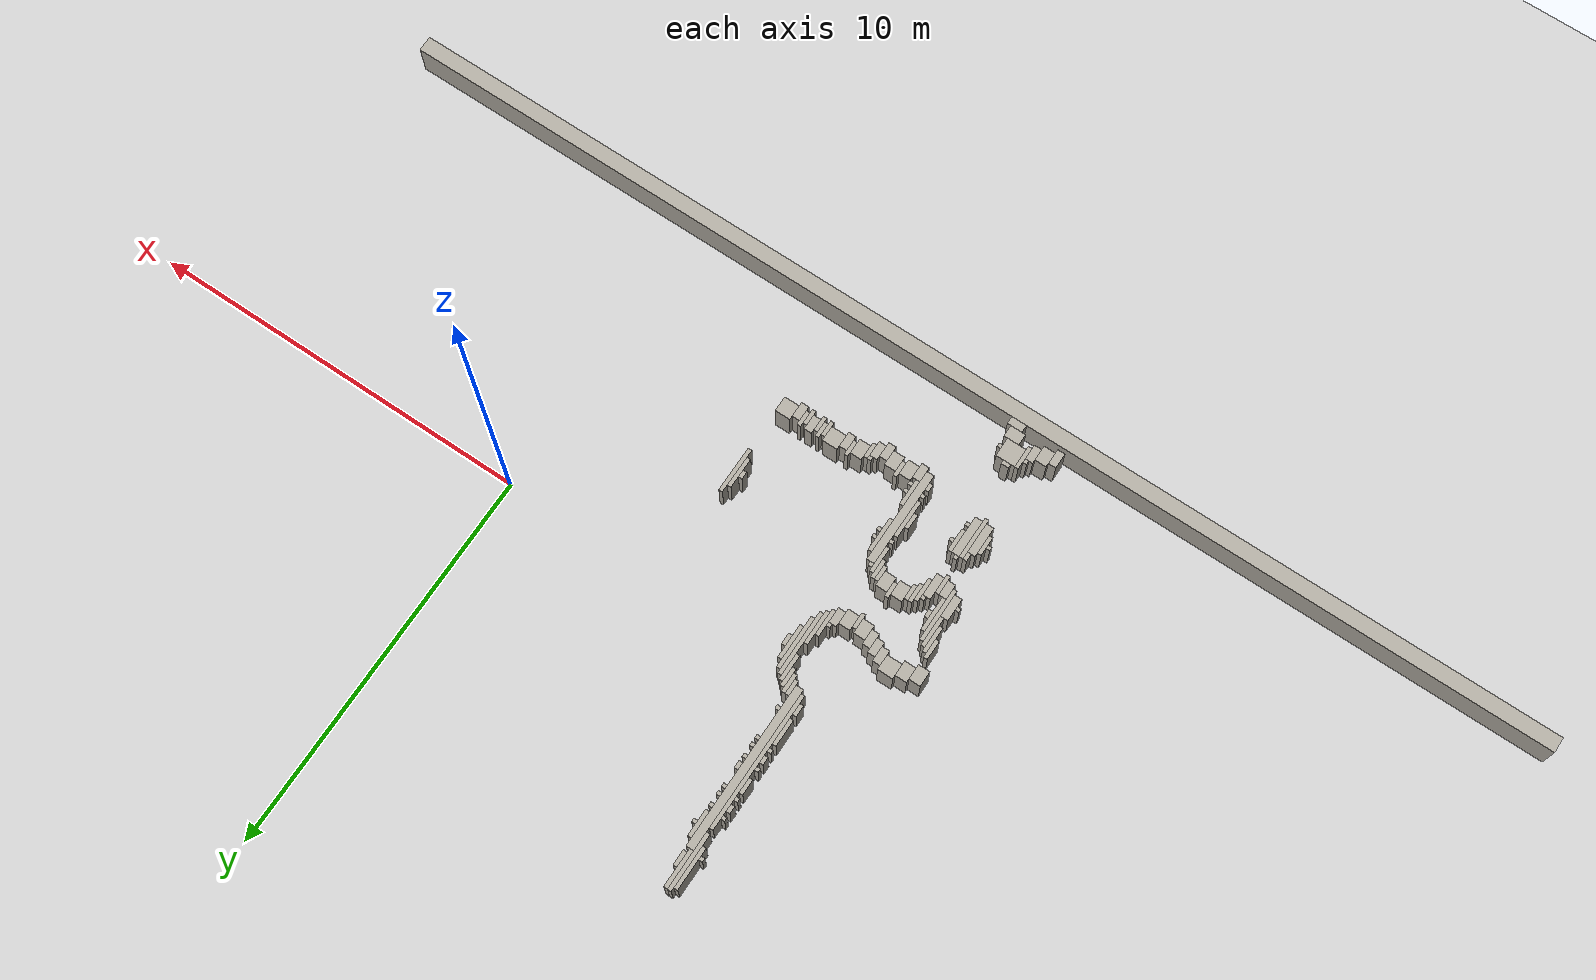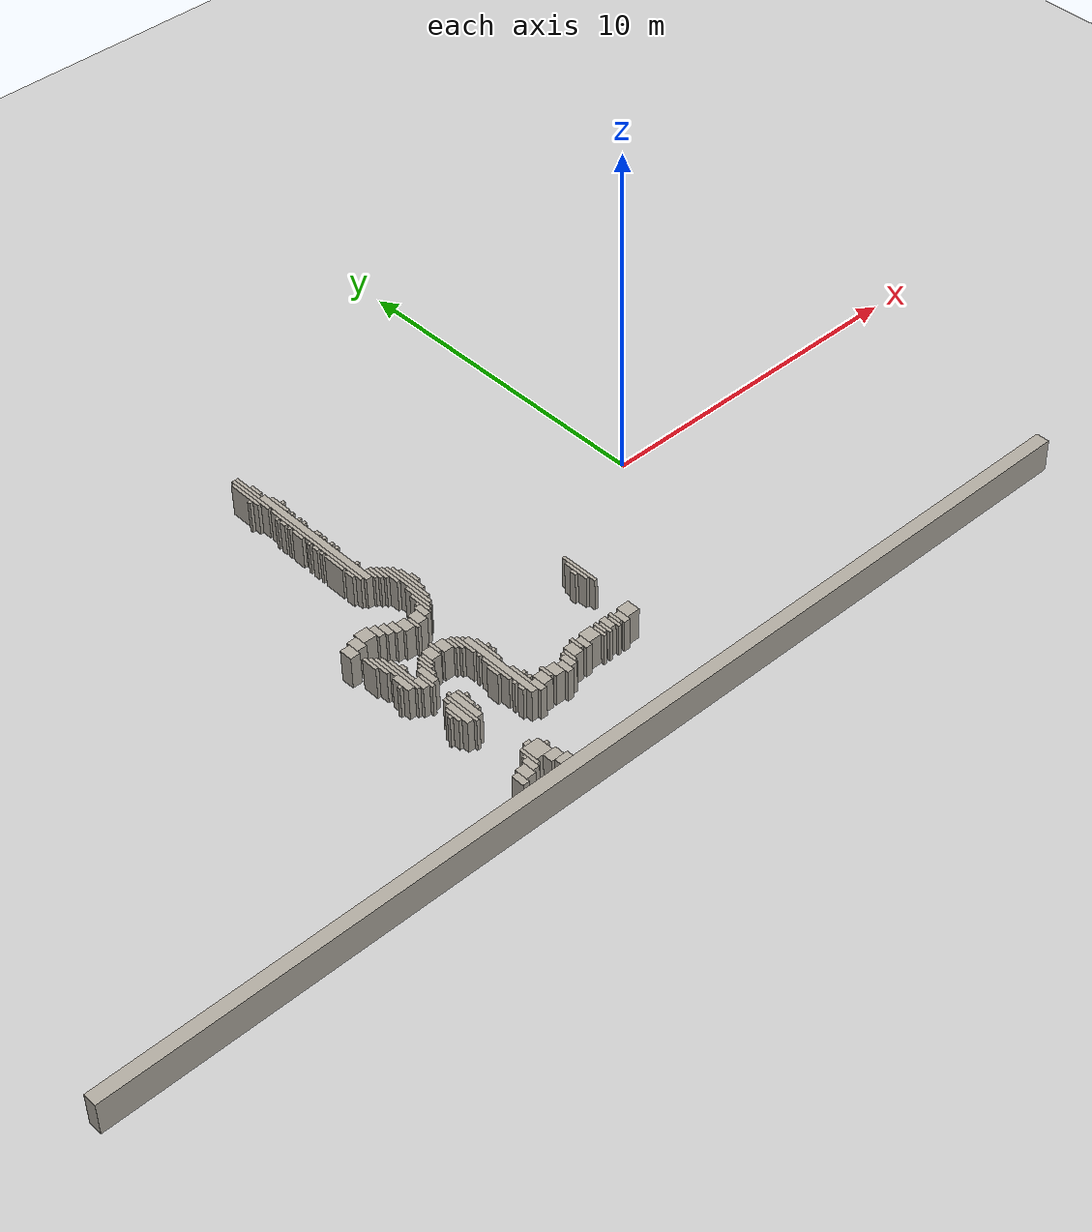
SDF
<sdf version="1.6">
 <world name="willow_office">
  <include><uri>model://sun</uri></include>
  <include><uri>model://ground_plane</uri></include>
  <model name="willow_office_walls">
   <static>true</static>
   <link name="w0000">
    <pose>-7.485 -7.738 0.500 0 0 0</pose>
    <collision name="c"><geometry><box><size>31.000 0.400 1.000</size></box></geometry></collision>
    <visual name="v">
     <geometry><box><size>31.000 0.400 1.000</size></box></geometry>
     <material><ambient>0.68 0.66 0.62 1</ambient><diffuse>0.68 0.66 0.62 1</diffuse></material>
    </visual>
   </link>
   <link name="w0006">
    <pose>-9.085 -7.438 0.500 0 0 0</pose>
    <collision name="c"><geometry><box><size>0.400 0.200 1.000</size></box></geometry></collision>
    <visual name="v">
     <geometry><box><size>0.400 0.200 1.000</size></box></geometry>
     <material><ambient>0.68 0.66 0.62 1</ambient><diffuse>0.68 0.66 0.62 1</diffuse></material>
    </visual>
   </link>
   <link name="w0015">
    <pose>-10.285 -7.238 0.500 0 0 0</pose>
    <collision name="c"><geometry><box><size>0.200 0.400 1.000</size></box></geometry></collision>
    <visual name="v">
     <geometry><box><size>0.200 0.400 1.000</size></box></geometry>
     <material><ambient>0.68 0.66 0.62 1</ambient><diffuse>0.68 0.66 0.62 1</diffuse></material>
    </visual>
   </link>
   <link name="w0023">
    <pose>-10.035 -7.138 0.500 0 0 0</pose>
    <collision name="c"><geometry><box><size>0.300 0.400 1.000</size></box></geometry></collision>
    <visual name="v">
     <geometry><box><size>0.300 0.400 1.000</size></box></geometry>
     <material><ambient>0.68 0.66 0.62 1</ambient><diffuse>0.68 0.66 0.62 1</diffuse></material>
    </visual>
   </link>
   <link name="w0024">
    <pose>-9.185 -7.188 0.500 0 0 0</pose>
    <collision name="c"><geometry><box><size>0.400 0.300 1.000</size></box></geometry></collision>
    <visual name="v">
     <geometry><box><size>0.400 0.300 1.000</size></box></geometry>
     <material><ambient>0.68 0.66 0.62 1</ambient><diffuse>0.68 0.66 0.62 1</diffuse></material>
    </visual>
   </link>
   <link name="w0032">
    <pose>-9.785 -7.038 0.500 0 0 0</pose>
    <collision name="c"><geometry><box><size>0.200 0.400 1.000</size></box></geometry></collision>
    <visual name="v">
     <geometry><box><size>0.200 0.400 1.000</size></box></geometry>
     <material><ambient>0.68 0.66 0.62 1</ambient><diffuse>0.68 0.66 0.62 1</diffuse></material>
    </visual>
   </link>
   <link name="w0041">
    <pose>-9.635 -6.838 0.500 0 0 0</pose>
    <collision name="c"><geometry><box><size>0.100 0.600 1.000</size></box></geometry></collision>
    <visual name="v">
     <geometry><box><size>0.100 0.600 1.000</size></box></geometry>
     <material><ambient>0.68 0.66 0.62 1</ambient><diffuse>0.68 0.66 0.62 1</diffuse></material>
    </visual>
   </link>
   <link name="w0050">
    <pose>-9.335 -6.788 0.500 0 0 0</pose>
    <collision name="c"><geometry><box><size>0.500 0.500 1.000</size></box></geometry></collision>
    <visual name="v">
     <geometry><box><size>0.500 0.500 1.000</size></box></geometry>
     <material><ambient>0.68 0.66 0.62 1</ambient><diffuse>0.68 0.66 0.62 1</diffuse></material>
    </visual>
   </link>
   <link name="w0061">
    <pose>-9.735 -6.788 0.500 0 0 0</pose>
    <collision name="c"><geometry><box><size>0.100 0.100 1.000</size></box></geometry></collision>
    <visual name="v">
     <geometry><box><size>0.100 0.100 1.000</size></box></geometry>
     <material><ambient>0.68 0.66 0.62 1</ambient><diffuse>0.68 0.66 0.62 1</diffuse></material>
    </visual>
   </link>
   <link name="w0062">
    <pose>-9.035 -6.788 0.500 0 0 0</pose>
    <collision name="c"><geometry><box><size>0.100 0.100 1.000</size></box></geometry></collision>
    <visual name="v">
     <geometry><box><size>0.100 0.100 1.000</size></box></geometry>
     <material><ambient>0.68 0.66 0.62 1</ambient><diffuse>0.68 0.66 0.62 1</diffuse></material>
    </visual>
   </link>
   <link name="w0067">
    <pose>-9.385 -6.488 0.500 0 0 0</pose>
    <collision name="c"><geometry><box><size>0.200 0.100 1.000</size></box></geometry></collision>
    <visual name="v">
     <geometry><box><size>0.200 0.100 1.000</size></box></geometry>
     <material><ambient>0.68 0.66 0.62 1</ambient><diffuse>0.68 0.66 0.62 1</diffuse></material>
    </visual>
   </link>
   <link name="w0118">
    <pose>-7.885 -5.238 0.500 0 0 0</pose>
    <collision name="c"><geometry><box><size>0.200 0.400 1.000</size></box></geometry></collision>
    <visual name="v">
     <geometry><box><size>0.200 0.400 1.000</size></box></geometry>
     <material><ambient>0.68 0.66 0.62 1</ambient><diffuse>0.68 0.66 0.62 1</diffuse></material>
    </visual>
   </link>
   <link name="w0119">
    <pose>-6.985 -5.238 0.500 0 0 0</pose>
    <collision name="c"><geometry><box><size>0.200 0.400 1.000</size></box></geometry></collision>
    <visual name="v">
     <geometry><box><size>0.200 0.400 1.000</size></box></geometry>
     <material><ambient>0.68 0.66 0.62 1</ambient><diffuse>0.68 0.66 0.62 1</diffuse></material>
    </visual>
   </link>
   <link name="w0127">
    <pose>-8.085 -4.088 0.500 0 0 0</pose>
    <collision name="c"><geometry><box><size>0.200 2.500 1.000</size></box></geometry></collision>
    <visual name="v">
     <geometry><box><size>0.200 2.500 1.000</size></box></geometry>
     <material><ambient>0.68 0.66 0.62 1</ambient><diffuse>0.68 0.66 0.62 1</diffuse></material>
    </visual>
   </link>
   <link name="w0128">
    <pose>-7.635 -5.138 0.500 0 0 0</pose>
    <collision name="c"><geometry><box><size>0.300 0.400 1.000</size></box></geometry></collision>
    <visual name="v">
     <geometry><box><size>0.300 0.400 1.000</size></box></geometry>
     <material><ambient>0.68 0.66 0.62 1</ambient><diffuse>0.68 0.66 0.62 1</diffuse></material>
    </visual>
   </link>
   <link name="w0129">
    <pose>-7.235 -5.138 0.500 0 0 0</pose>
    <collision name="c"><geometry><box><size>0.300 0.400 1.000</size></box></geometry></collision>
    <visual name="v">
     <geometry><box><size>0.300 0.400 1.000</size></box></geometry>
     <material><ambient>0.68 0.66 0.62 1</ambient><diffuse>0.68 0.66 0.62 1</diffuse></material>
    </visual>
   </link>
   <link name="w0130">
    <pose>-6.785 -5.138 0.500 0 0 0</pose>
    <collision name="c"><geometry><box><size>0.200 0.400 1.000</size></box></geometry></collision>
    <visual name="v">
     <geometry><box><size>0.200 0.400 1.000</size></box></geometry>
     <material><ambient>0.68 0.66 0.62 1</ambient><diffuse>0.68 0.66 0.62 1</diffuse></material>
    </visual>
   </link>
   <link name="w0139">
    <pose>-7.435 -5.038 0.500 0 0 0</pose>
    <collision name="c"><geometry><box><size>0.100 0.400 1.000</size></box></geometry></collision>
    <visual name="v">
     <geometry><box><size>0.100 0.400 1.000</size></box></geometry>
     <material><ambient>0.68 0.66 0.62 1</ambient><diffuse>0.68 0.66 0.62 1</diffuse></material>
    </visual>
   </link>
   <link name="w0140">
    <pose>-6.635 -5.038 0.500 0 0 0</pose>
    <collision name="c"><geometry><box><size>0.100 0.400 1.000</size></box></geometry></collision>
    <visual name="v">
     <geometry><box><size>0.100 0.400 1.000</size></box></geometry>
     <material><ambient>0.68 0.66 0.62 1</ambient><diffuse>0.68 0.66 0.62 1</diffuse></material>
    </visual>
   </link>
   <link name="w0147">
    <pose>-9.735 -4.588 0.500 0 0 0</pose>
    <collision name="c"><geometry><box><size>0.100 1.100 1.000</size></box></geometry></collision>
    <visual name="v">
     <geometry><box><size>0.100 1.100 1.000</size></box></geometry>
     <material><ambient>0.68 0.66 0.62 1</ambient><diffuse>0.68 0.66 0.62 1</diffuse></material>
    </visual>
   </link>
   <link name="w0148">
    <pose>-8.235 -5.038 0.500 0 0 0</pose>
    <collision name="c"><geometry><box><size>0.100 0.200 1.000</size></box></geometry></collision>
    <visual name="v">
     <geometry><box><size>0.100 0.200 1.000</size></box></geometry>
     <material><ambient>0.68 0.66 0.62 1</ambient><diffuse>0.68 0.66 0.62 1</diffuse></material>
    </visual>
   </link>
   <link name="w0149">
    <pose>-6.435 -4.938 0.500 0 0 0</pose>
    <collision name="c"><geometry><box><size>0.300 0.400 1.000</size></box></geometry></collision>
    <visual name="v">
     <geometry><box><size>0.300 0.400 1.000</size></box></geometry>
     <material><ambient>0.68 0.66 0.62 1</ambient><diffuse>0.68 0.66 0.62 1</diffuse></material>
    </visual>
   </link>
   <link name="w0150">
    <pose>-6.085 -4.938 0.500 0 0 0</pose>
    <collision name="c"><geometry><box><size>0.200 0.400 1.000</size></box></geometry></collision>
    <visual name="v">
     <geometry><box><size>0.200 0.400 1.000</size></box></geometry>
     <material><ambient>0.68 0.66 0.62 1</ambient><diffuse>0.68 0.66 0.62 1</diffuse></material>
    </visual>
   </link>
   <link name="w0151">
    <pose>-5.535 -4.938 0.500 0 0 0</pose>
    <collision name="c"><geometry><box><size>0.100 0.400 1.000</size></box></geometry></collision>
    <visual name="v">
     <geometry><box><size>0.100 0.400 1.000</size></box></geometry>
     <material><ambient>0.68 0.66 0.62 1</ambient><diffuse>0.68 0.66 0.62 1</diffuse></material>
    </visual>
   </link>
   <link name="w0152">
    <pose>-5.335 -4.938 0.500 0 0 0</pose>
    <collision name="c"><geometry><box><size>0.100 0.400 1.000</size></box></geometry></collision>
    <visual name="v">
     <geometry><box><size>0.100 0.400 1.000</size></box></geometry>
     <material><ambient>0.68 0.66 0.62 1</ambient><diffuse>0.68 0.66 0.62 1</diffuse></material>
    </visual>
   </link>
   <link name="w0153">
    <pose>-5.035 -4.938 0.500 0 0 0</pose>
    <collision name="c"><geometry><box><size>0.100 0.400 1.000</size></box></geometry></collision>
    <visual name="v">
     <geometry><box><size>0.100 0.400 1.000</size></box></geometry>
     <material><ambient>0.68 0.66 0.62 1</ambient><diffuse>0.68 0.66 0.62 1</diffuse></material>
    </visual>
   </link>
   <link name="w0154">
    <pose>-4.785 -4.938 0.500 0 0 0</pose>
    <collision name="c"><geometry><box><size>0.200 0.400 1.000</size></box></geometry></collision>
    <visual name="v">
     <geometry><box><size>0.200 0.400 1.000</size></box></geometry>
     <material><ambient>0.68 0.66 0.62 1</ambient><diffuse>0.68 0.66 0.62 1</diffuse></material>
    </visual>
   </link>
   <link name="w0161">
    <pose>-9.885 -4.638 0.500 0 0 0</pose>
    <collision name="c"><geometry><box><size>0.200 0.800 1.000</size></box></geometry></collision>
    <visual name="v">
     <geometry><box><size>0.200 0.800 1.000</size></box></geometry>
     <material><ambient>0.68 0.66 0.62 1</ambient><diffuse>0.68 0.66 0.62 1</diffuse></material>
    </visual>
   </link>
   <link name="w0162">
    <pose>-9.585 -4.538 0.500 0 0 0</pose>
    <collision name="c"><geometry><box><size>0.200 1.000 1.000</size></box></geometry></collision>
    <visual name="v">
     <geometry><box><size>0.200 1.000 1.000</size></box></geometry>
     <material><ambient>0.68 0.66 0.62 1</ambient><diffuse>0.68 0.66 0.62 1</diffuse></material>
    </visual>
   </link>
   <link name="w0163">
    <pose>-7.935 -4.688 0.500 0 0 0</pose>
    <collision name="c"><geometry><box><size>0.100 0.700 1.000</size></box></geometry></collision>
    <visual name="v">
     <geometry><box><size>0.100 0.700 1.000</size></box></geometry>
     <material><ambient>0.68 0.66 0.62 1</ambient><diffuse>0.68 0.66 0.62 1</diffuse></material>
    </visual>
   </link>
   <link name="w0164">
    <pose>-6.235 -4.838 0.500 0 0 0</pose>
    <collision name="c"><geometry><box><size>0.100 0.400 1.000</size></box></geometry></collision>
    <visual name="v">
     <geometry><box><size>0.100 0.400 1.000</size></box></geometry>
     <material><ambient>0.68 0.66 0.62 1</ambient><diffuse>0.68 0.66 0.62 1</diffuse></material>
    </visual>
   </link>
   <link name="w0165">
    <pose>-5.785 -4.838 0.500 0 0 0</pose>
    <collision name="c"><geometry><box><size>0.400 0.400 1.000</size></box></geometry></collision>
    <visual name="v">
     <geometry><box><size>0.400 0.400 1.000</size></box></geometry>
     <material><ambient>0.68 0.66 0.62 1</ambient><diffuse>0.68 0.66 0.62 1</diffuse></material>
    </visual>
   </link>
   <link name="w0166">
    <pose>-5.435 -4.838 0.500 0 0 0</pose>
    <collision name="c"><geometry><box><size>0.100 0.400 1.000</size></box></geometry></collision>
    <visual name="v">
     <geometry><box><size>0.100 0.400 1.000</size></box></geometry>
     <material><ambient>0.68 0.66 0.62 1</ambient><diffuse>0.68 0.66 0.62 1</diffuse></material>
    </visual>
   </link>
   <link name="w0167">
    <pose>-5.185 -4.838 0.500 0 0 0</pose>
    <collision name="c"><geometry><box><size>0.200 0.400 1.000</size></box></geometry></collision>
    <visual name="v">
     <geometry><box><size>0.200 0.400 1.000</size></box></geometry>
     <material><ambient>0.68 0.66 0.62 1</ambient><diffuse>0.68 0.66 0.62 1</diffuse></material>
    </visual>
   </link>
   <link name="w0168">
    <pose>-4.935 -4.838 0.500 0 0 0</pose>
    <collision name="c"><geometry><box><size>0.100 0.400 1.000</size></box></geometry></collision>
    <visual name="v">
     <geometry><box><size>0.100 0.400 1.000</size></box></geometry>
     <material><ambient>0.68 0.66 0.62 1</ambient><diffuse>0.68 0.66 0.62 1</diffuse></material>
    </visual>
   </link>
   <link name="w0169">
    <pose>-4.485 -4.838 0.500 0 0 0</pose>
    <collision name="c"><geometry><box><size>0.400 0.400 1.000</size></box></geometry></collision>
    <visual name="v">
     <geometry><box><size>0.400 0.400 1.000</size></box></geometry>
     <material><ambient>0.68 0.66 0.62 1</ambient><diffuse>0.68 0.66 0.62 1</diffuse></material>
    </visual>
   </link>
   <link name="w0178">
    <pose>-7.835 -4.888 0.500 0 0 0</pose>
    <collision name="c"><geometry><box><size>0.100 0.100 1.000</size></box></geometry></collision>
    <visual name="v">
     <geometry><box><size>0.100 0.100 1.000</size></box></geometry>
     <material><ambient>0.68 0.66 0.62 1</ambient><diffuse>0.68 0.66 0.62 1</diffuse></material>
    </visual>
   </link>
   <link name="w0179">
    <pose>-6.735 -4.888 0.500 0 0 0</pose>
    <collision name="c"><geometry><box><size>0.100 0.100 1.000</size></box></geometry></collision>
    <visual name="v">
     <geometry><box><size>0.100 0.100 1.000</size></box></geometry>
     <material><ambient>0.68 0.66 0.62 1</ambient><diffuse>0.68 0.66 0.62 1</diffuse></material>
    </visual>
   </link>
   <link name="w0185">
    <pose>-10.035 -4.588 0.500 0 0 0</pose>
    <collision name="c"><geometry><box><size>0.100 0.500 1.000</size></box></geometry></collision>
    <visual name="v">
     <geometry><box><size>0.100 0.500 1.000</size></box></geometry>
     <material><ambient>0.68 0.66 0.62 1</ambient><diffuse>0.68 0.66 0.62 1</diffuse></material>
    </visual>
   </link>
   <link name="w0186">
    <pose>-9.435 -4.788 0.500 0 0 0</pose>
    <collision name="c"><geometry><box><size>0.100 0.100 1.000</size></box></geometry></collision>
    <visual name="v">
     <geometry><box><size>0.100 0.100 1.000</size></box></geometry>
     <material><ambient>0.68 0.66 0.62 1</ambient><diffuse>0.68 0.66 0.62 1</diffuse></material>
    </visual>
   </link>
   <link name="w0187">
    <pose>-8.235 -4.788 0.500 0 0 0</pose>
    <collision name="c"><geometry><box><size>0.100 0.100 1.000</size></box></geometry></collision>
    <visual name="v">
     <geometry><box><size>0.100 0.100 1.000</size></box></geometry>
     <material><ambient>0.68 0.66 0.62 1</ambient><diffuse>0.68 0.66 0.62 1</diffuse></material>
    </visual>
   </link>
   <link name="w0195">
    <pose>-7.835 -4.688 0.500 0 0 0</pose>
    <collision name="c"><geometry><box><size>0.100 0.100 1.000</size></box></geometry></collision>
    <visual name="v">
     <geometry><box><size>0.100 0.100 1.000</size></box></geometry>
     <material><ambient>0.68 0.66 0.62 1</ambient><diffuse>0.68 0.66 0.62 1</diffuse></material>
    </visual>
   </link>
   <link name="w0207">
    <pose>-10.135 -4.588 0.500 0 0 0</pose>
    <collision name="c"><geometry><box><size>0.100 0.100 1.000</size></box></geometry></collision>
    <visual name="v">
     <geometry><box><size>0.100 0.100 1.000</size></box></geometry>
     <material><ambient>0.68 0.66 0.62 1</ambient><diffuse>0.68 0.66 0.62 1</diffuse></material>
    </visual>
   </link>
   <link name="w0208">
    <pose>-9.435 -4.338 0.500 0 0 0</pose>
    <collision name="c"><geometry><box><size>0.100 0.600 1.000</size></box></geometry></collision>
    <visual name="v">
     <geometry><box><size>0.100 0.600 1.000</size></box></geometry>
     <material><ambient>0.68 0.66 0.62 1</ambient><diffuse>0.68 0.66 0.62 1</diffuse></material>
    </visual>
   </link>
   <link name="w0209">
    <pose>-8.235 -4.138 0.500 0 0 0</pose>
    <collision name="c"><geometry><box><size>0.100 1.000 1.000</size></box></geometry></collision>
    <visual name="v">
     <geometry><box><size>0.100 1.000 1.000</size></box></geometry>
     <material><ambient>0.68 0.66 0.62 1</ambient><diffuse>0.68 0.66 0.62 1</diffuse></material>
    </visual>
   </link>
   <link name="w0232">
    <pose>-9.335 -4.288 0.500 0 0 0</pose>
    <collision name="c"><geometry><box><size>0.100 0.100 1.000</size></box></geometry></collision>
    <visual name="v">
     <geometry><box><size>0.100 0.100 1.000</size></box></geometry>
     <material><ambient>0.68 0.66 0.62 1</ambient><diffuse>0.68 0.66 0.62 1</diffuse></material>
    </visual>
   </link>
   <link name="w0233">
    <pose>-8.335 -4.138 0.500 0 0 0</pose>
    <collision name="c"><geometry><box><size>0.100 0.400 1.000</size></box></geometry></collision>
    <visual name="v">
     <geometry><box><size>0.100 0.400 1.000</size></box></geometry>
     <material><ambient>0.68 0.66 0.62 1</ambient><diffuse>0.68 0.66 0.62 1</diffuse></material>
    </visual>
   </link>
   <link name="w0242">
    <pose>-9.835 -4.138 0.500 0 0 0</pose>
    <collision name="c"><geometry><box><size>0.100 0.200 1.000</size></box></geometry></collision>
    <visual name="v">
     <geometry><box><size>0.100 0.200 1.000</size></box></geometry>
     <material><ambient>0.68 0.66 0.62 1</ambient><diffuse>0.68 0.66 0.62 1</diffuse></material>
    </visual>
   </link>
   <link name="w0259">
    <pose>-9.635 -3.988 0.500 0 0 0</pose>
    <collision name="c"><geometry><box><size>0.100 0.100 1.000</size></box></geometry></collision>
    <visual name="v">
     <geometry><box><size>0.100 0.100 1.000</size></box></geometry>
     <material><ambient>0.68 0.66 0.62 1</ambient><diffuse>0.68 0.66 0.62 1</diffuse></material>
    </visual>
   </link>
   <link name="w0264">
    <pose>-7.935 -3.488 0.500 0 0 0</pose>
    <collision name="c"><geometry><box><size>0.100 0.900 1.000</size></box></geometry></collision>
    <visual name="v">
     <geometry><box><size>0.100 0.900 1.000</size></box></geometry>
     <material><ambient>0.68 0.66 0.62 1</ambient><diffuse>0.68 0.66 0.62 1</diffuse></material>
    </visual>
   </link>
   <link name="w0286">
    <pose>-7.835 -3.588 0.500 0 0 0</pose>
    <collision name="c"><geometry><box><size>0.100 0.100 1.000</size></box></geometry></collision>
    <visual name="v">
     <geometry><box><size>0.100 0.100 1.000</size></box></geometry>
     <material><ambient>0.68 0.66 0.62 1</ambient><diffuse>0.68 0.66 0.62 1</diffuse></material>
    </visual>
   </link>
   <link name="w0294">
    <pose>-9.735 -3.288 0.500 0 0 0</pose>
    <collision name="c"><geometry><box><size>0.100 0.500 1.000</size></box></geometry></collision>
    <visual name="v">
     <geometry><box><size>0.100 0.500 1.000</size></box></geometry>
     <material><ambient>0.68 0.66 0.62 1</ambient><diffuse>0.68 0.66 0.62 1</diffuse></material>
    </visual>
   </link>
   <link name="w0295">
    <pose>-8.235 -3.488 0.500 0 0 0</pose>
    <collision name="c"><geometry><box><size>0.100 0.100 1.000</size></box></geometry></collision>
    <visual name="v">
     <geometry><box><size>0.100 0.100 1.000</size></box></geometry>
     <material><ambient>0.68 0.66 0.62 1</ambient><diffuse>0.68 0.66 0.62 1</diffuse></material>
    </visual>
   </link>
   <link name="w0296">
    <pose>-4.335 -2.938 0.500 0 0 0</pose>
    <collision name="c"><geometry><box><size>0.100 1.200 1.000</size></box></geometry></collision>
    <visual name="v">
     <geometry><box><size>0.100 1.200 1.000</size></box></geometry>
     <material><ambient>0.68 0.66 0.62 1</ambient><diffuse>0.68 0.66 0.62 1</diffuse></material>
    </visual>
   </link>
   <link name="w0303">
    <pose>-9.885 -3.238 0.500 0 0 0</pose>
    <collision name="c"><geometry><box><size>0.200 0.400 1.000</size></box></geometry></collision>
    <visual name="v">
     <geometry><box><size>0.200 0.400 1.000</size></box></geometry>
     <material><ambient>0.68 0.66 0.62 1</ambient><diffuse>0.68 0.66 0.62 1</diffuse></material>
    </visual>
   </link>
   <link name="w0304">
    <pose>-9.585 -3.138 0.500 0 0 0</pose>
    <collision name="c"><geometry><box><size>0.200 0.600 1.000</size></box></geometry></collision>
    <visual name="v">
     <geometry><box><size>0.200 0.600 1.000</size></box></geometry>
     <material><ambient>0.68 0.66 0.62 1</ambient><diffuse>0.68 0.66 0.62 1</diffuse></material>
    </visual>
   </link>
   <link name="w0305">
    <pose>-7.835 -3.388 0.500 0 0 0</pose>
    <collision name="c"><geometry><box><size>0.100 0.100 1.000</size></box></geometry></collision>
    <visual name="v">
     <geometry><box><size>0.100 0.100 1.000</size></box></geometry>
     <material><ambient>0.68 0.66 0.62 1</ambient><diffuse>0.68 0.66 0.62 1</diffuse></material>
    </visual>
   </link>
   <link name="w0313">
    <pose>-10.035 -2.638 0.500 0 0 0</pose>
    <collision name="c"><geometry><box><size>0.100 1.400 1.000</size></box></geometry></collision>
    <visual name="v">
     <geometry><box><size>0.100 1.400 1.000</size></box></geometry>
     <material><ambient>0.68 0.66 0.62 1</ambient><diffuse>0.68 0.66 0.62 1</diffuse></material>
    </visual>
   </link>
   <link name="w0314">
    <pose>-8.235 -2.988 0.500 0 0 0</pose>
    <collision name="c"><geometry><box><size>0.100 0.700 1.000</size></box></geometry></collision>
    <visual name="v">
     <geometry><box><size>0.100 0.700 1.000</size></box></geometry>
     <material><ambient>0.68 0.66 0.62 1</ambient><diffuse>0.68 0.66 0.62 1</diffuse></material>
    </visual>
   </link>
   <link name="w0315">
    <pose>-4.435 -2.938 0.500 0 0 0</pose>
    <collision name="c"><geometry><box><size>0.100 0.800 1.000</size></box></geometry></collision>
    <visual name="v">
     <geometry><box><size>0.100 0.800 1.000</size></box></geometry>
     <material><ambient>0.68 0.66 0.62 1</ambient><diffuse>0.68 0.66 0.62 1</diffuse></material>
    </visual>
   </link>
   <link name="w0319">
    <pose>-10.185 -2.938 0.500 0 0 0</pose>
    <collision name="c"><geometry><box><size>0.200 0.600 1.000</size></box></geometry></collision>
    <visual name="v">
     <geometry><box><size>0.200 0.600 1.000</size></box></geometry>
     <material><ambient>0.68 0.66 0.62 1</ambient><diffuse>0.68 0.66 0.62 1</diffuse></material>
    </visual>
   </link>
   <link name="w0320">
    <pose>-9.435 -2.938 0.500 0 0 0</pose>
    <collision name="c"><geometry><box><size>0.100 0.600 1.000</size></box></geometry></collision>
    <visual name="v">
     <geometry><box><size>0.100 0.600 1.000</size></box></geometry>
     <material><ambient>0.68 0.66 0.62 1</ambient><diffuse>0.68 0.66 0.62 1</diffuse></material>
    </visual>
   </link>
   <link name="w0331">
    <pose>-10.335 -2.988 0.500 0 0 0</pose>
    <collision name="c"><geometry><box><size>0.100 0.100 1.000</size></box></geometry></collision>
    <visual name="v">
     <geometry><box><size>0.100 0.100 1.000</size></box></geometry>
     <material><ambient>0.68 0.66 0.62 1</ambient><diffuse>0.68 0.66 0.62 1</diffuse></material>
    </visual>
   </link>
   <link name="w0332">
    <pose>-9.935 -2.588 0.500 0 0 0</pose>
    <collision name="c"><geometry><box><size>0.100 0.900 1.000</size></box></geometry></collision>
    <visual name="v">
     <geometry><box><size>0.100 0.900 1.000</size></box></geometry>
     <material><ambient>0.68 0.66 0.62 1</ambient><diffuse>0.68 0.66 0.62 1</diffuse></material>
    </visual>
   </link>
   <link name="w0333">
    <pose>-9.335 -2.788 0.500 0 0 0</pose>
    <collision name="c"><geometry><box><size>0.100 0.500 1.000</size></box></geometry></collision>
    <visual name="v">
     <geometry><box><size>0.100 0.500 1.000</size></box></geometry>
     <material><ambient>0.68 0.66 0.62 1</ambient><diffuse>0.68 0.66 0.62 1</diffuse></material>
    </visual>
   </link>
   <link name="w0334">
    <pose>-8.335 -2.788 0.500 0 0 0</pose>
    <collision name="c"><geometry><box><size>0.100 0.500 1.000</size></box></geometry></collision>
    <visual name="v">
     <geometry><box><size>0.100 0.500 1.000</size></box></geometry>
     <material><ambient>0.68 0.66 0.62 1</ambient><diffuse>0.68 0.66 0.62 1</diffuse></material>
    </visual>
   </link>
   <link name="w0335">
    <pose>-4.535 -2.938 0.500 0 0 0</pose>
    <collision name="c"><geometry><box><size>0.100 0.200 1.000</size></box></geometry></collision>
    <visual name="v">
     <geometry><box><size>0.100 0.200 1.000</size></box></geometry>
     <material><ambient>0.68 0.66 0.62 1</ambient><diffuse>0.68 0.66 0.62 1</diffuse></material>
    </visual>
   </link>
   <link name="w0344">
    <pose>-9.235 -2.738 0.500 0 0 0</pose>
    <collision name="c"><geometry><box><size>0.100 0.400 1.000</size></box></geometry></collision>
    <visual name="v">
     <geometry><box><size>0.100 0.400 1.000</size></box></geometry>
     <material><ambient>0.68 0.66 0.62 1</ambient><diffuse>0.68 0.66 0.62 1</diffuse></material>
    </visual>
   </link>
   <link name="w0345">
    <pose>-8.435 -2.738 0.500 0 0 0</pose>
    <collision name="c"><geometry><box><size>0.100 0.400 1.000</size></box></geometry></collision>
    <visual name="v">
     <geometry><box><size>0.100 0.400 1.000</size></box></geometry>
     <material><ambient>0.68 0.66 0.62 1</ambient><diffuse>0.68 0.66 0.62 1</diffuse></material>
    </visual>
   </link>
   <link name="w0350">
    <pose>-9.535 -2.788 0.500 0 0 0</pose>
    <collision name="c"><geometry><box><size>0.100 0.100 1.000</size></box></geometry></collision>
    <visual name="v">
     <geometry><box><size>0.100 0.100 1.000</size></box></geometry>
     <material><ambient>0.68 0.66 0.62 1</ambient><diffuse>0.68 0.66 0.62 1</diffuse></material>
    </visual>
   </link>
   <link name="w0351">
    <pose>-9.035 -2.638 0.500 0 0 0</pose>
    <collision name="c"><geometry><box><size>0.300 0.400 1.000</size></box></geometry></collision>
    <visual name="v">
     <geometry><box><size>0.300 0.400 1.000</size></box></geometry>
     <material><ambient>0.68 0.66 0.62 1</ambient><diffuse>0.68 0.66 0.62 1</diffuse></material>
    </visual>
   </link>
   <link name="w0352">
    <pose>-8.635 -2.638 0.500 0 0 0</pose>
    <collision name="c"><geometry><box><size>0.300 0.400 1.000</size></box></geometry></collision>
    <visual name="v">
     <geometry><box><size>0.300 0.400 1.000</size></box></geometry>
     <material><ambient>0.68 0.66 0.62 1</ambient><diffuse>0.68 0.66 0.62 1</diffuse></material>
    </visual>
   </link>
   <link name="w0353">
    <pose>-8.135 -2.788 0.500 0 0 0</pose>
    <collision name="c"><geometry><box><size>0.100 0.100 1.000</size></box></geometry></collision>
    <visual name="v">
     <geometry><box><size>0.100 0.100 1.000</size></box></geometry>
     <material><ambient>0.68 0.66 0.62 1</ambient><diffuse>0.68 0.66 0.62 1</diffuse></material>
    </visual>
   </link>
   <link name="w0357">
    <pose>-8.835 -2.538 0.500 0 0 0</pose>
    <collision name="c"><geometry><box><size>0.100 0.400 1.000</size></box></geometry></collision>
    <visual name="v">
     <geometry><box><size>0.100 0.400 1.000</size></box></geometry>
     <material><ambient>0.68 0.66 0.62 1</ambient><diffuse>0.68 0.66 0.62 1</diffuse></material>
    </visual>
   </link>
   <link name="w0363">
    <pose>-10.135 -2.238 0.500 0 0 0</pose>
    <collision name="c"><geometry><box><size>0.100 0.800 1.000</size></box></geometry></collision>
    <visual name="v">
     <geometry><box><size>0.100 0.800 1.000</size></box></geometry>
     <material><ambient>0.68 0.66 0.62 1</ambient><diffuse>0.68 0.66 0.62 1</diffuse></material>
    </visual>
   </link>
   <link name="w0364">
    <pose>-9.835 -2.538 0.500 0 0 0</pose>
    <collision name="c"><geometry><box><size>0.100 0.200 1.000</size></box></geometry></collision>
    <visual name="v">
     <geometry><box><size>0.100 0.200 1.000</size></box></geometry>
     <material><ambient>0.68 0.66 0.62 1</ambient><diffuse>0.68 0.66 0.62 1</diffuse></material>
    </visual>
   </link>
   <link name="w0374">
    <pose>-10.235 -2.088 0.500 0 0 0</pose>
    <collision name="c"><geometry><box><size>0.100 0.700 1.000</size></box></geometry></collision>
    <visual name="v">
     <geometry><box><size>0.100 0.700 1.000</size></box></geometry>
     <material><ambient>0.68 0.66 0.62 1</ambient><diffuse>0.68 0.66 0.62 1</diffuse></material>
    </visual>
   </link>
   <link name="w0385">
    <pose>-10.335 -1.888 0.500 0 0 0</pose>
    <collision name="c"><geometry><box><size>0.100 0.500 1.000</size></box></geometry></collision>
    <visual name="v">
     <geometry><box><size>0.100 0.500 1.000</size></box></geometry>
     <material><ambient>0.68 0.66 0.62 1</ambient><diffuse>0.68 0.66 0.62 1</diffuse></material>
    </visual>
   </link>
   <link name="w0416">
    <pose>-8.635 -1.538 0.500 0 0 0</pose>
    <collision name="c"><geometry><box><size>0.100 0.400 1.000</size></box></geometry></collision>
    <visual name="v">
     <geometry><box><size>0.100 0.400 1.000</size></box></geometry>
     <material><ambient>0.68 0.66 0.62 1</ambient><diffuse>0.68 0.66 0.62 1</diffuse></material>
    </visual>
   </link>
   <link name="w0425">
    <pose>-8.835 -1.438 0.500 0 0 0</pose>
    <collision name="c"><geometry><box><size>0.300 0.400 1.000</size></box></geometry></collision>
    <visual name="v">
     <geometry><box><size>0.300 0.400 1.000</size></box></geometry>
     <material><ambient>0.68 0.66 0.62 1</ambient><diffuse>0.68 0.66 0.62 1</diffuse></material>
    </visual>
   </link>
   <link name="w0426">
    <pose>-8.435 -1.438 0.500 0 0 0</pose>
    <collision name="c"><geometry><box><size>0.300 0.400 1.000</size></box></geometry></collision>
    <visual name="v">
     <geometry><box><size>0.300 0.400 1.000</size></box></geometry>
     <material><ambient>0.68 0.66 0.62 1</ambient><diffuse>0.68 0.66 0.62 1</diffuse></material>
    </visual>
   </link>
   <link name="w0439">
    <pose>-9.085 -1.338 0.500 0 0 0</pose>
    <collision name="c"><geometry><box><size>0.200 0.400 1.000</size></box></geometry></collision>
    <visual name="v">
     <geometry><box><size>0.200 0.400 1.000</size></box></geometry>
     <material><ambient>0.68 0.66 0.62 1</ambient><diffuse>0.68 0.66 0.62 1</diffuse></material>
    </visual>
   </link>
   <link name="w0440">
    <pose>-8.185 -1.338 0.500 0 0 0</pose>
    <collision name="c"><geometry><box><size>0.200 0.400 1.000</size></box></geometry></collision>
    <visual name="v">
     <geometry><box><size>0.200 0.400 1.000</size></box></geometry>
     <material><ambient>0.68 0.66 0.62 1</ambient><diffuse>0.68 0.66 0.62 1</diffuse></material>
    </visual>
   </link>
   <link name="w0450">
    <pose>-10.435 -1.238 0.500 0 0 0</pose>
    <collision name="c"><geometry><box><size>0.300 0.400 1.000</size></box></geometry></collision>
    <visual name="v">
     <geometry><box><size>0.300 0.400 1.000</size></box></geometry>
     <material><ambient>0.68 0.66 0.62 1</ambient><diffuse>0.68 0.66 0.62 1</diffuse></material>
    </visual>
   </link>
   <link name="w0451">
    <pose>-9.285 -1.238 0.500 0 0 0</pose>
    <collision name="c"><geometry><box><size>0.200 0.400 1.000</size></box></geometry></collision>
    <visual name="v">
     <geometry><box><size>0.200 0.400 1.000</size></box></geometry>
     <material><ambient>0.68 0.66 0.62 1</ambient><diffuse>0.68 0.66 0.62 1</diffuse></material>
    </visual>
   </link>
   <link name="w0452">
    <pose>-8.035 -1.088 0.500 0 0 0</pose>
    <collision name="c"><geometry><box><size>0.100 0.700 1.000</size></box></geometry></collision>
    <visual name="v">
     <geometry><box><size>0.100 0.700 1.000</size></box></geometry>
     <material><ambient>0.68 0.66 0.62 1</ambient><diffuse>0.68 0.66 0.62 1</diffuse></material>
    </visual>
   </link>
   <link name="w0457">
    <pose>-10.135 -1.138 0.500 0 0 0</pose>
    <collision name="c"><geometry><box><size>0.300 0.400 1.000</size></box></geometry></collision>
    <visual name="v">
     <geometry><box><size>0.300 0.400 1.000</size></box></geometry>
     <material><ambient>0.68 0.66 0.62 1</ambient><diffuse>0.68 0.66 0.62 1</diffuse></material>
    </visual>
   </link>
   <link name="w0458">
    <pose>-9.485 -1.138 0.500 0 0 0</pose>
    <collision name="c"><geometry><box><size>0.200 0.400 1.000</size></box></geometry></collision>
    <visual name="v">
     <geometry><box><size>0.200 0.400 1.000</size></box></geometry>
     <material><ambient>0.68 0.66 0.62 1</ambient><diffuse>0.68 0.66 0.62 1</diffuse></material>
    </visual>
   </link>
   <link name="w0459">
    <pose>-7.935 -0.888 0.500 0 0 0</pose>
    <collision name="c"><geometry><box><size>0.100 0.900 1.000</size></box></geometry></collision>
    <visual name="v">
     <geometry><box><size>0.100 0.900 1.000</size></box></geometry>
     <material><ambient>0.68 0.66 0.62 1</ambient><diffuse>0.68 0.66 0.62 1</diffuse></material>
    </visual>
   </link>
   <link name="w0464">
    <pose>-9.785 -1.038 0.500 0 0 0</pose>
    <collision name="c"><geometry><box><size>0.400 0.400 1.000</size></box></geometry></collision>
    <visual name="v">
     <geometry><box><size>0.400 0.400 1.000</size></box></geometry>
     <material><ambient>0.68 0.66 0.62 1</ambient><diffuse>0.68 0.66 0.62 1</diffuse></material>
    </visual>
   </link>
   <link name="w0465">
    <pose>-7.835 -0.388 0.500 0 0 0</pose>
    <collision name="c"><geometry><box><size>0.100 1.700 1.000</size></box></geometry></collision>
    <visual name="v">
     <geometry><box><size>0.100 1.700 1.000</size></box></geometry>
     <material><ambient>0.68 0.66 0.62 1</ambient><diffuse>0.68 0.66 0.62 1</diffuse></material>
    </visual>
   </link>
   <link name="w0469">
    <pose>-8.135 -1.088 0.500 0 0 0</pose>
    <collision name="c"><geometry><box><size>0.100 0.100 1.000</size></box></geometry></collision>
    <visual name="v">
     <geometry><box><size>0.100 0.100 1.000</size></box></geometry>
     <material><ambient>0.68 0.66 0.62 1</ambient><diffuse>0.68 0.66 0.62 1</diffuse></material>
    </visual>
   </link>
   <link name="w0473">
    <pose>-7.735 -0.338 0.500 0 0 0</pose>
    <collision name="c"><geometry><box><size>0.100 1.400 1.000</size></box></geometry></collision>
    <visual name="v">
     <geometry><box><size>0.100 1.400 1.000</size></box></geometry>
     <material><ambient>0.68 0.66 0.62 1</ambient><diffuse>0.68 0.66 0.62 1</diffuse></material>
    </visual>
   </link>
   <link name="w0484">
    <pose>-7.635 -0.288 0.500 0 0 0</pose>
    <collision name="c"><geometry><box><size>0.100 0.900 1.000</size></box></geometry></collision>
    <visual name="v">
     <geometry><box><size>0.100 0.900 1.000</size></box></geometry>
     <material><ambient>0.68 0.66 0.62 1</ambient><diffuse>0.68 0.66 0.62 1</diffuse></material>
    </visual>
   </link>
   <link name="w0494">
    <pose>-7.535 -0.288 0.500 0 0 0</pose>
    <collision name="c"><geometry><box><size>0.100 0.300 1.000</size></box></geometry></collision>
    <visual name="v">
     <geometry><box><size>0.100 0.300 1.000</size></box></geometry>
     <material><ambient>0.68 0.66 0.62 1</ambient><diffuse>0.68 0.66 0.62 1</diffuse></material>
    </visual>
   </link>
   <link name="w0500">
    <pose>-7.935 0.212 0.500 0 0 0</pose>
    <collision name="c"><geometry><box><size>0.100 0.700 1.000</size></box></geometry></collision>
    <visual name="v">
     <geometry><box><size>0.100 0.700 1.000</size></box></geometry>
     <material><ambient>0.68 0.66 0.62 1</ambient><diffuse>0.68 0.66 0.62 1</diffuse></material>
    </visual>
   </link>
   <link name="w0506">
    <pose>-8.035 0.412 0.500 0 0 0</pose>
    <collision name="c"><geometry><box><size>0.100 0.500 1.000</size></box></geometry></collision>
    <visual name="v">
     <geometry><box><size>0.100 0.500 1.000</size></box></geometry>
     <material><ambient>0.68 0.66 0.62 1</ambient><diffuse>0.68 0.66 0.62 1</diffuse></material>
    </visual>
   </link>
   <link name="w0509">
    <pose>-8.135 0.512 0.500 0 0 0</pose>
    <collision name="c"><geometry><box><size>0.100 0.500 1.000</size></box></geometry></collision>
    <visual name="v">
     <geometry><box><size>0.100 0.500 1.000</size></box></geometry>
     <material><ambient>0.68 0.66 0.62 1</ambient><diffuse>0.68 0.66 0.62 1</diffuse></material>
    </visual>
   </link>
   <link name="w0510">
    <pose>-8.235 0.562 0.500 0 0 0</pose>
    <collision name="c"><geometry><box><size>0.100 0.400 1.000</size></box></geometry></collision>
    <visual name="v">
     <geometry><box><size>0.100 0.400 1.000</size></box></geometry>
     <material><ambient>0.68 0.66 0.62 1</ambient><diffuse>0.68 0.66 0.62 1</diffuse></material>
    </visual>
   </link>
   <link name="w0511">
    <pose>-8.385 2.612 0.500 0 0 0</pose>
    <collision name="c"><geometry><box><size>0.200 4.300 1.000</size></box></geometry></collision>
    <visual name="v">
     <geometry><box><size>0.200 4.300 1.000</size></box></geometry>
     <material><ambient>0.68 0.66 0.62 1</ambient><diffuse>0.68 0.66 0.62 1</diffuse></material>
    </visual>
   </link>
   <link name="w0513">
    <pose>-8.535 2.362 0.500 0 0 0</pose>
    <collision name="c"><geometry><box><size>0.100 3.600 1.000</size></box></geometry></collision>
    <visual name="v">
     <geometry><box><size>0.100 3.600 1.000</size></box></geometry>
     <material><ambient>0.68 0.66 0.62 1</ambient><diffuse>0.68 0.66 0.62 1</diffuse></material>
    </visual>
   </link>
   <link name="w0519">
    <pose>-8.635 0.912 0.500 0 0 0</pose>
    <collision name="c"><geometry><box><size>0.100 0.300 1.000</size></box></geometry></collision>
    <visual name="v">
     <geometry><box><size>0.100 0.300 1.000</size></box></geometry>
     <material><ambient>0.68 0.66 0.62 1</ambient><diffuse>0.68 0.66 0.62 1</diffuse></material>
    </visual>
   </link>
   <link name="w0525">
    <pose>-8.235 1.112 0.500 0 0 0</pose>
    <collision name="c"><geometry><box><size>0.100 0.100 1.000</size></box></geometry></collision>
    <visual name="v">
     <geometry><box><size>0.100 0.100 1.000</size></box></geometry>
     <material><ambient>0.68 0.66 0.62 1</ambient><diffuse>0.68 0.66 0.62 1</diffuse></material>
    </visual>
   </link>
   <link name="w0528">
    <pose>-8.635 1.512 0.500 0 0 0</pose>
    <collision name="c"><geometry><box><size>0.100 0.700 1.000</size></box></geometry></collision>
    <visual name="v">
     <geometry><box><size>0.100 0.700 1.000</size></box></geometry>
     <material><ambient>0.68 0.66 0.62 1</ambient><diffuse>0.68 0.66 0.62 1</diffuse></material>
    </visual>
   </link>
   <link name="w0542">
    <pose>-8.235 1.912 0.500 0 0 0</pose>
    <collision name="c"><geometry><box><size>0.100 0.100 1.000</size></box></geometry></collision>
    <visual name="v">
     <geometry><box><size>0.100 0.100 1.000</size></box></geometry>
     <material><ambient>0.68 0.66 0.62 1</ambient><diffuse>0.68 0.66 0.62 1</diffuse></material>
    </visual>
   </link>
   <link name="w0545">
    <pose>-8.635 2.012 0.500 0 0 0</pose>
    <collision name="c"><geometry><box><size>0.100 0.100 1.000</size></box></geometry></collision>
    <visual name="v">
     <geometry><box><size>0.100 0.100 1.000</size></box></geometry>
     <material><ambient>0.68 0.66 0.62 1</ambient><diffuse>0.68 0.66 0.62 1</diffuse></material>
    </visual>
   </link>
   <link name="w0549">
    <pose>-8.235 2.112 0.500 0 0 0</pose>
    <collision name="c"><geometry><box><size>0.100 0.100 1.000</size></box></geometry></collision>
    <visual name="v">
     <geometry><box><size>0.100 0.100 1.000</size></box></geometry>
     <material><ambient>0.68 0.66 0.62 1</ambient><diffuse>0.68 0.66 0.62 1</diffuse></material>
    </visual>
   </link>
   <link name="w0553">
    <pose>-8.635 2.262 0.500 0 0 0</pose>
    <collision name="c"><geometry><box><size>0.100 0.200 1.000</size></box></geometry></collision>
    <visual name="v">
     <geometry><box><size>0.100 0.200 1.000</size></box></geometry>
     <material><ambient>0.68 0.66 0.62 1</ambient><diffuse>0.68 0.66 0.62 1</diffuse></material>
    </visual>
   </link>
   <link name="w0559">
    <pose>-8.235 2.412 0.500 0 0 0</pose>
    <collision name="c"><geometry><box><size>0.100 0.100 1.000</size></box></geometry></collision>
    <visual name="v">
     <geometry><box><size>0.100 0.100 1.000</size></box></geometry>
     <material><ambient>0.68 0.66 0.62 1</ambient><diffuse>0.68 0.66 0.62 1</diffuse></material>
    </visual>
   </link>
   <link name="w0562">
    <pose>-8.635 2.512 0.500 0 0 0</pose>
    <collision name="c"><geometry><box><size>0.100 0.100 1.000</size></box></geometry></collision>
    <visual name="v">
     <geometry><box><size>0.100 0.100 1.000</size></box></geometry>
     <material><ambient>0.68 0.66 0.62 1</ambient><diffuse>0.68 0.66 0.62 1</diffuse></material>
    </visual>
   </link>
   <link name="w0565">
    <pose>-8.235 2.662 0.500 0 0 0</pose>
    <collision name="c"><geometry><box><size>0.100 0.200 1.000</size></box></geometry></collision>
    <visual name="v">
     <geometry><box><size>0.100 0.200 1.000</size></box></geometry>
     <material><ambient>0.68 0.66 0.62 1</ambient><diffuse>0.68 0.66 0.62 1</diffuse></material>
    </visual>
   </link>
   <link name="w0572">
    <pose>-8.635 2.962 0.500 0 0 0</pose>
    <collision name="c"><geometry><box><size>0.100 0.400 1.000</size></box></geometry></collision>
    <visual name="v">
     <geometry><box><size>0.100 0.400 1.000</size></box></geometry>
     <material><ambient>0.68 0.66 0.62 1</ambient><diffuse>0.68 0.66 0.62 1</diffuse></material>
    </visual>
   </link>
   <link name="w0580">
    <pose>-8.235 3.212 0.500 0 0 0</pose>
    <collision name="c"><geometry><box><size>0.100 0.100 1.000</size></box></geometry></collision>
    <visual name="v">
     <geometry><box><size>0.100 0.100 1.000</size></box></geometry>
     <material><ambient>0.68 0.66 0.62 1</ambient><diffuse>0.68 0.66 0.62 1</diffuse></material>
    </visual>
   </link>
   <link name="w0585">
    <pose>-8.635 3.312 0.500 0 0 0</pose>
    <collision name="c"><geometry><box><size>0.100 0.100 1.000</size></box></geometry></collision>
    <visual name="v">
     <geometry><box><size>0.100 0.100 1.000</size></box></geometry>
     <material><ambient>0.68 0.66 0.62 1</ambient><diffuse>0.68 0.66 0.62 1</diffuse></material>
    </visual>
   </link>
   <link name="w0590">
    <pose>-8.235 3.412 0.500 0 0 0</pose>
    <collision name="c"><geometry><box><size>0.100 0.100 1.000</size></box></geometry></collision>
    <visual name="v">
     <geometry><box><size>0.100 0.100 1.000</size></box></geometry>
     <material><ambient>0.68 0.66 0.62 1</ambient><diffuse>0.68 0.66 0.62 1</diffuse></material>
    </visual>
   </link>
   <link name="w0592">
    <pose>-8.635 3.562 0.500 0 0 0</pose>
    <collision name="c"><geometry><box><size>0.100 0.200 1.000</size></box></geometry></collision>
    <visual name="v">
     <geometry><box><size>0.100 0.200 1.000</size></box></geometry>
     <material><ambient>0.68 0.66 0.62 1</ambient><diffuse>0.68 0.66 0.62 1</diffuse></material>
    </visual>
   </link>
   <link name="w0597">
    <pose>-8.235 3.712 0.500 0 0 0</pose>
    <collision name="c"><geometry><box><size>0.100 0.100 1.000</size></box></geometry></collision>
    <visual name="v">
     <geometry><box><size>0.100 0.100 1.000</size></box></geometry>
     <material><ambient>0.68 0.66 0.62 1</ambient><diffuse>0.68 0.66 0.62 1</diffuse></material>
    </visual>
   </link>
   <link name="w0599">
    <pose>-8.635 3.812 0.500 0 0 0</pose>
    <collision name="c"><geometry><box><size>0.100 0.100 1.000</size></box></geometry></collision>
    <visual name="v">
     <geometry><box><size>0.100 0.100 1.000</size></box></geometry>
     <material><ambient>0.68 0.66 0.62 1</ambient><diffuse>0.68 0.66 0.62 1</diffuse></material>
    </visual>
   </link>
   <link name="w0600">
    <pose>-8.235 4.212 0.500 0 0 0</pose>
    <collision name="c"><geometry><box><size>0.100 0.700 1.000</size></box></geometry></collision>
    <visual name="v">
     <geometry><box><size>0.100 0.700 1.000</size></box></geometry>
     <material><ambient>0.68 0.66 0.62 1</ambient><diffuse>0.68 0.66 0.62 1</diffuse></material>
    </visual>
   </link>
   <link name="w0607">
    <pose>-8.135 4.212 0.500 0 0 0</pose>
    <collision name="c"><geometry><box><size>0.100 0.100 1.000</size></box></geometry></collision>
    <visual name="v">
     <geometry><box><size>0.100 0.100 1.000</size></box></geometry>
     <material><ambient>0.68 0.66 0.62 1</ambient><diffuse>0.68 0.66 0.62 1</diffuse></material>
    </visual>
   </link>
   <link name="w0610">
    <pose>-8.535 5.012 0.500 0 0 0</pose>
    <collision name="c"><geometry><box><size>0.100 1.500 1.000</size></box></geometry></collision>
    <visual name="v">
     <geometry><box><size>0.100 1.500 1.000</size></box></geometry>
     <material><ambient>0.68 0.66 0.62 1</ambient><diffuse>0.68 0.66 0.62 1</diffuse></material>
    </visual>
   </link>
   <link name="w0619">
    <pose>-8.635 5.112 0.500 0 0 0</pose>
    <collision name="c"><geometry><box><size>0.100 1.100 1.000</size></box></geometry></collision>
    <visual name="v">
     <geometry><box><size>0.100 1.100 1.000</size></box></geometry>
     <material><ambient>0.68 0.66 0.62 1</ambient><diffuse>0.68 0.66 0.62 1</diffuse></material>
    </visual>
   </link>
   <link name="w0626">
    <pose>-8.735 4.812 0.500 0 0 0</pose>
    <collision name="c"><geometry><box><size>0.100 0.100 1.000</size></box></geometry></collision>
    <visual name="v">
     <geometry><box><size>0.100 0.100 1.000</size></box></geometry>
     <material><ambient>0.68 0.66 0.62 1</ambient><diffuse>0.68 0.66 0.62 1</diffuse></material>
    </visual>
   </link>
   <link name="w0627">
    <pose>-8.435 5.262 0.500 0 0 0</pose>
    <collision name="c"><geometry><box><size>0.100 1.000 1.000</size></box></geometry></collision>
    <visual name="v">
     <geometry><box><size>0.100 1.000 1.000</size></box></geometry>
     <material><ambient>0.68 0.66 0.62 1</ambient><diffuse>0.68 0.66 0.62 1</diffuse></material>
    </visual>
   </link>
   <link name="w0628">
    <pose>-8.335 5.062 0.500 0 0 0</pose>
    <collision name="c"><geometry><box><size>0.100 0.400 1.000</size></box></geometry></collision>
    <visual name="v">
     <geometry><box><size>0.100 0.400 1.000</size></box></geometry>
     <material><ambient>0.68 0.66 0.62 1</ambient><diffuse>0.68 0.66 0.62 1</diffuse></material>
    </visual>
   </link>
  </model>
 </world>
</sdf>
